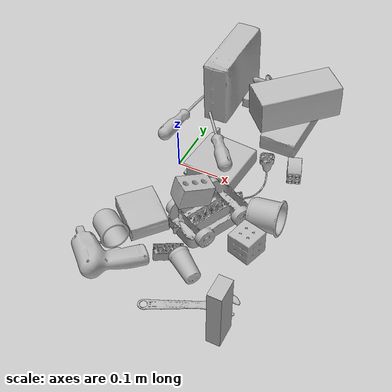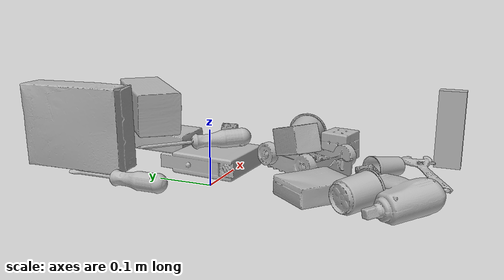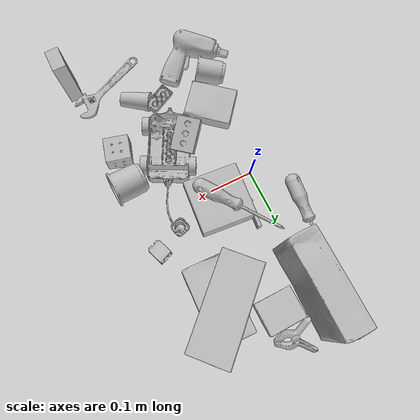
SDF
<sdf version="1.4">
  <world name="default">
    <light name="light1" type="point">
      <pose>0 0 1 0 0 0</pose>
      <diffuse>3 3 3 1</diffuse>
      <specular>3 3 3 1</specular>
    </light>
    <light name="light2" type="point">
      <pose>0 0.5 2 0 0 0</pose>
      <diffuse>1 1 1 1</diffuse>
      <specular>1 1 1 1</specular>
    </light>
    <light name="light3" type="point">
      <pose>0 0.5 2 0 0 0</pose>
      <diffuse>3 3 3 1</diffuse>
      <specular>3 3 3 1</specular>
    </light>
    <scene>
      <ambient>0.7 0.7 0.7</ambient>
    </scene>
    <model name="box21">
      <link name="link_box21">
        <collision name="default">
          <geometry>
            <mesh>
              <uri>model://cracker_box/collision_meshes/collision.obj</uri>
              <scale>1.0 1.0 1.0</scale>
            </mesh>
          </geometry>
          <surface>
            <friction>
              <ode>
                <mu>0.5</mu>
                <mu2>0.5</mu2>
              </ode>
            </friction>
          <contact>
        <ode>
            <max_vel>0</max_vel>
            <min_depth>0.0001</min_depth>
            <kp>1e8</kp>
        </ode>
    </contact></surface>
        </collision>
        <visual name="default">
          <geometry>
            <mesh>
              <uri>model://cracker_box/visual_meshes/visual.dae</uri>
              <scale>1.0 1.0 1.0</scale>
            </mesh>
          </geometry>
        </visual>
        <inertial>
          <mass>2.967785358428955</mass>
          <pose>0.0009464151808060706 0.00025434247800149024 -0.0017029535956680775 -0.0003162076618733006 -0.011106490531610344 0.00254679570085012</pose>
          <inertia>
            <ixx>0.0075487206</ixx>
            <iyy>0.012464421</iyy>
            <izz>0.017787872</izz>
            <ixy>0</ixy>
            <ixz>0</ixz>
            <iyz>0</iyz>
          </inertia>
        </inertial>
      </link>
      <pose>0.00839060265570879 0.2822447717189789 0.08175764977931976 1.5452336292455062 0.009040233017087031 1.5886534731728776</pose>
    </model>
    <model name="box22">
      <link name="link_box22">
        <collision name="default">
          <geometry>
            <mesh>
              <uri>model://rubiks_cube/collision_meshes/collision.obj</uri>
              <scale>1.0 1.0 1.0</scale>
            </mesh>
          </geometry>
          <surface>
            <friction>
              <ode>
                <mu>0.5</mu>
                <mu2>0.5</mu2>
              </ode>
            </friction>
          <contact>
        <ode>
            <max_vel>0</max_vel>
            <min_depth>0.0001</min_depth>
            <kp>1e8</kp>
        </ode>
    </contact></surface>
        </collision>
        <visual name="default">
          <geometry>
            <mesh>
              <uri>model://rubiks_cube/visual_meshes/visual.dae</uri>
              <scale>1.0 1.0 1.0</scale>
            </mesh>
          </geometry>
        </visual>
        <inertial>
          <mass>0.2631562352180481</mass>
          <pose>2.6721041649580002e-05 5.2569666877388954e-05 -7.264316082000732e-06 -0.05467275409565722 -0.09814109117242276 -0.03445701547045584</pose>
          <inertia>
            <ixx>0.0001454115</ixx>
            <iyy>0.00014473335</iyy>
            <izz>0.00014661645</izz>
            <ixy>0</ixy>
            <ixz>0</ixz>
            <iyz>0</iyz>
          </inertia>
        </inertial>
      </link>
      <pose>0.2507631480693817 -0.16981540620326996 0.02905973047018051 -3.134139495922113 0.01089223622607768 2.843466174871671</pose>
    </model>
    <model name="box23">
      <link name="link_box23">
        <collision name="default">
          <geometry>
            <mesh>
              <uri>model://pudding_box/collision_meshes/collision.obj</uri>
              <scale>1.0 1.0 1.0</scale>
            </mesh>
          </geometry>
          <surface>
            <friction>
              <ode>
                <mu>0.5</mu>
                <mu2>0.5</mu2>
              </ode>
            </friction>
          <contact>
        <ode>
            <max_vel>0</max_vel>
            <min_depth>0.0001</min_depth>
            <kp>1e8</kp>
        </ode>
    </contact></surface>
        </collision>
        <visual name="default">
          <geometry>
            <mesh>
              <uri>model://pudding_box/visual_meshes/visual.dae</uri>
              <scale>1.0 1.0 1.0</scale>
            </mesh>
          </geometry>
        </visual>
        <inertial>
          <mass>0.41353368759155273</mass>
          <pose>0.0004894821904599667 0.0008067885646596551 -0.0005188827635720372 0.005213101814074476 -0.006603797777454713 0.020079821436089117</pose>
          <inertia>
            <ixx>0.0004674785</ixx>
            <iyy>0.00031452288</iyy>
            <izz>0.0006903542</izz>
            <ixy>0</ixy>
            <ixz>0</ixz>
            <iyz>0</iyz>
          </inertia>
        </inertial>
      </link>
      <pose>0.007399552036076784 -0.18713872134685516 0.01868601329624653 -3.141592651532966 -3.0975195982015976e-08 0.8676545741487458</pose>
    </model>
    <model name="cup1">
      <link name="link_cup1">
        <collision name="default">
          <geometry>
            <mesh>
              <uri>model://cup_small/collision_meshes/collision.obj</uri>
              <scale>1.0 1.0 1.0</scale>
            </mesh>
          </geometry>
          <surface>
            <friction>
              <ode>
                <mu>0.5</mu>
                <mu2>0.5</mu2>
              </ode>
            </friction>
          <contact>
        <ode>
            <max_vel>0</max_vel>
            <min_depth>0.0001</min_depth>
            <kp>1e8</kp>
        </ode>
    </contact></surface>
        </collision>
        <visual name="default">
          <geometry>
            <mesh>
              <uri>model://cup_small/visual_meshes/visual.dae</uri>
              <scale>1.0 1.0 1.0</scale>
            </mesh>
          </geometry>
        </visual>
        <inertial>
          <mass>0.02095564641058445</mass>
          <pose>0.00010482477955520153 -0.0003377848770469427 -0.01074282731860876 -0.011492722259696445 -0.015280529703091471 -0.5058449819350237</pose>
          <inertia>
            <ixx>1.2338362e-05</ixx>
            <iyy>1.240201e-05</iyy>
            <izz>5.5708097e-06</izz>
            <ixy>0</ixy>
            <ixz>0</ixz>
            <iyz>0</iyz>
          </inertia>
        </inertial>
      </link>
      <pose>0.16158385574817657 -0.27504152059555054 0.019964419305324554 1.234299967055302 1.304097143671696 -2.510867906979853</pose>
    </model>
    <model name="cup2">
      <link name="link_cup2">
        <collision name="default">
          <geometry>
            <mesh>
              <uri>model://c_cups/collision_meshes/collision.obj</uri>
              <scale>1.0 1.0 1.0</scale>
            </mesh>
          </geometry>
          <surface>
            <friction>
              <ode>
                <mu>0.5</mu>
                <mu2>0.5</mu2>
              </ode>
            </friction>
          <contact>
        <ode>
            <max_vel>0</max_vel>
            <min_depth>0.0001</min_depth>
            <kp>1e8</kp>
        </ode>
    </contact></surface>
        </collision>
        <visual name="default">
          <geometry>
            <mesh>
              <uri>model://c_cups/visual_meshes/visual.dae</uri>
              <scale>1.0 1.0 1.0</scale>
            </mesh>
          </geometry>
        </visual>
        <inertial>
          <mass>0.04905003309249878</mass>
          <pose>0.0007237255922518671 0.0020153908990323544 -0.0012750986497849226 0.30215813246853196 0.013461388587527759 -0.08771773533446486</pose>
          <inertia>
            <ixx>3.6477843e-05</ixx>
            <iyy>3.583322e-05</iyy>
            <izz>3.225985e-05</izz>
            <ixy>0</ixy>
            <ixz>0</ixz>
            <iyz>0</iyz>
          </inertia>
        </inertial>
      </link>
      <pose>-0.028789715841412544 -0.26082944869995117 0.030088894069194794 0.8271748918678216 -1.44333154340842 1.7019736327616453</pose>
    </model>
    <model name="box11">
      <link name="link_box11">
        <collision name="default">
          <geometry>
            <mesh>
              <uri>model://sugar_box/collision_meshes/collision.obj</uri>
              <scale>1.0 1.0 1.0</scale>
            </mesh>
          </geometry>
          <surface>
            <friction>
              <ode>
                <mu>0.5</mu>
                <mu2>0.5</mu2>
              </ode>
            </friction>
          <contact>
        <ode>
            <max_vel>0</max_vel>
            <min_depth>0.0001</min_depth>
            <kp>1e8</kp>
        </ode>
    </contact></surface>
        </collision>
        <visual name="default">
          <geometry>
            <mesh>
              <uri>model://sugar_box/visual_meshes/visual.dae</uri>
              <scale>1.0 1.0 1.0</scale>
            </mesh>
          </geometry>
        </visual>
        <inertial>
          <mass>0.9405714869499207</mass>
          <pose>0.0010343727190047503 3.849109634757042e-05 -0.0003636480832938105 -0.00040462618385709627 0.0010506635220579009 0.0026153790218148127</pose>
          <inertia>
            <ixx>0.0007836817</ixx>
            <iyy>0.0025330195</iyy>
            <izz>0.0030323272</izz>
            <ixy>0</ixy>
            <ixz>0</ixz>
            <iyz>0</iyz>
          </inertia>
        </inertial>
      </link>
      <pose>0.19620023667812347 0.22090522944927216 0.022897135466337204 -0.025059021034482522 -0.012495460494385656 1.5306452418840915</pose>
    </model>
    <model name="box12">
      <link name="link_box12">
        <collision name="default">
          <geometry>
            <mesh>
              <uri>model://jenga/collision_meshes/collision.obj</uri>
              <scale>1.0 1.0 1.0</scale>
            </mesh>
          </geometry>
          <surface>
            <friction>
              <ode>
                <mu>0.5</mu>
                <mu2>0.5</mu2>
              </ode>
            </friction>
          <contact>
        <ode>
            <max_vel>0</max_vel>
            <min_depth>0.0001</min_depth>
            <kp>1e8</kp>
        </ode>
    </contact></surface>
        </collision>
        <visual name="default">
          <geometry>
            <mesh>
              <uri>model://jenga/visual_meshes/visual.dae</uri>
              <scale>1.0 1.0 1.0</scale>
            </mesh>
          </geometry>
        </visual>
        <inertial>
          <mass>0.2285791039466858</mass>
          <pose>-2.502855807051674e-07 -0.00010250010382151231 -4.0923405322246253e-05 0.0 -7.342155186052628e-07 0.0</pose>
          <inertia>
            <ixx>6.3253385e-05</ixx>
            <iyy>0.00042860323</iyy>
            <izz>0.00045757034</izz>
            <ixy>0</ixy>
            <ixz>0</ixz>
            <iyz>0</iyz>
          </inertia>
        </inertial>
      </link>
      <pose>0.2863246202468872 -0.3752305805683136 0.07347044348716736 -3.141266332412165 1.5507467904948093 3.1396770499997646</pose>
    </model>
    <model name="box13">
      <link name="link_box13">
        <collision name="default">
          <geometry>
            <mesh>
              <uri>model://wood_block/collision_meshes/collision.obj</uri>
              <scale>1.0 1.0 1.0</scale>
            </mesh>
          </geometry>
          <surface>
            <friction>
              <ode>
                <mu>0.5</mu>
                <mu2>0.5</mu2>
              </ode>
            </friction>
          <contact>
        <ode>
            <max_vel>0</max_vel>
            <min_depth>0.0001</min_depth>
            <kp>1e8</kp>
        </ode>
    </contact></surface>
        </collision>
        <visual name="default">
          <geometry>
            <mesh>
              <uri>model://wood_block/visual_meshes/visual.dae</uri>
              <scale>1.0 1.0 1.0</scale>
            </mesh>
          </geometry>
        </visual>
        <inertial>
          <mass>1.608048677444458</mass>
          <pose>-5.813315056002466e-06 -0.000570809468626976 0.0002640858292579651 -0.05220975529066727 -0.005192695547513155 -0.006861377927637377</pose>
          <inertia>
            <ixx>0.002151813</ixx>
            <iyy>0.006797577</iyy>
            <izz>0.0067721503</izz>
            <ixy>0</ixy>
            <ixz>0</ixz>
            <iyz>0</iyz>
          </inertia>
        </inertial>
      </link>
      <pose>0.19379562139511108 0.2395896166563034 0.09151899069547653 1.5880811312791723 -0.027910828289976968 0.7621615971398106</pose>
    </model>
    <model name="box14">
      <link name="link_box14">
        <collision name="default">
          <geometry>
            <mesh>
              <uri>model://gelatin_box/collision_meshes/collision.obj</uri>
              <scale>1.0 1.0 1.0</scale>
            </mesh>
          </geometry>
          <surface>
            <friction>
              <ode>
                <mu>0.5</mu>
                <mu2>0.5</mu2>
              </ode>
            </friction>
          <contact>
        <ode>
            <max_vel>0</max_vel>
            <min_depth>0.0001</min_depth>
            <kp>1e8</kp>
        </ode>
    </contact></surface>
        </collision>
        <visual name="default">
          <geometry>
            <mesh>
              <uri>model://gelatin_box/visual_meshes/visual.dae</uri>
              <scale>1.0 1.0 1.0</scale>
            </mesh>
          </geometry>
        </visual>
        <inertial>
          <mass>0.228233203291893</mass>
          <pose>0.0004319618456065655 0.00011156871914863586 -0.0003640321083366871 -0.0010503721031013481 -0.004755817754301117 0.016440566922732165</pose>
          <inertia>
            <ixx>0.000161114</ixx>
            <iyy>0.0001150829</iyy>
            <izz>0.0002452514</izz>
            <ixy>0</ixy>
            <ixz>0</ixz>
            <iyz>0</iyz>
          </inertia>
        </inertial>
      </link>
      <pose>0.08925986289978027 0.29539820551872253 0.014580653980374336 -3.1258654101229855 -0.025718986608194088 1.5980848430970984</pose>
    </model>
    <model name="cup15">
      <link name="link_cup15">
        <collision name="default">
          <geometry>
            <mesh>
              <uri>model://f_cups/collision_meshes/collision.obj</uri>
              <scale>1.0 1.0 1.0</scale>
            </mesh>
          </geometry>
          <surface>
            <friction>
              <ode>
                <mu>0.5</mu>
                <mu2>0.5</mu2>
              </ode>
            </friction>
          <contact>
        <ode>
            <max_vel>0</max_vel>
            <min_depth>0.0001</min_depth>
            <kp>1e8</kp>
        </ode>
    </contact></surface>
        </collision>
        <visual name="default">
          <geometry>
            <mesh>
              <uri>model://f_cups/visual_meshes/visual.dae</uri>
              <scale>1.0 1.0 1.0</scale>
            </mesh>
          </geometry>
        </visual>
        <inertial>
          <mass>0.05267045274376869</mass>
          <pose>-0.003171468386426568 -0.0006240073125809431 -0.003655537962913513 0.7862325736201227 -0.2607934836260618 -0.18237270236977254</pose>
          <inertia>
            <ixx>4.9511644e-05</ixx>
            <iyy>5.193826e-05</iyy>
            <izz>5.4069198e-05</izz>
            <ixy>0</ixy>
            <ixz>0</ixz>
            <iyz>0</iyz>
          </inertia>
        </inertial>
      </link>
      <pose>0.26009616255760193 -0.09056755900382996 0.03723272681236267 -0.6759648593460635 -1.452161061231242 -2.415391101170493</pose>
    </model>
    <model name="toy1">
      <link name="link_toy1">
        <collision name="default">
          <geometry>
            <mesh>
              <uri>model://g_lego_duplo/collision_meshes/collision.obj</uri>
              <scale>1.0 1.0 1.0</scale>
            </mesh>
          </geometry>
          <surface>
            <friction>
              <ode>
                <mu>0.5</mu>
                <mu2>0.5</mu2>
              </ode>
            </friction>
          <contact>
        <ode>
            <max_vel>0</max_vel>
            <min_depth>0.0001</min_depth>
            <kp>1e8</kp>
        </ode>
    </contact></surface>
        </collision>
        <visual name="default">
          <geometry>
            <mesh>
              <uri>model://g_lego_duplo/visual_meshes/visual.dae</uri>
              <scale>1.0 1.0 1.0</scale>
            </mesh>
          </geometry>
        </visual>
        <inertial>
          <mass>0.5557854771614075</mass>
          <pose>-0.050047677010297775 0.0017554635414853692 0.0038806761149317026 0.01096300832625367 0.038108254431045284 -0.0965302354071939</pose>
          <inertia>
            <ixx>0.0008053398</ixx>
            <iyy>0.0024348022</iyy>
            <izz>0.003046027</izz>
            <ixy>0</ixy>
            <ixz>0</ixz>
            <iyz>0</iyz>
          </inertia>
        </inertial>
      </link>
      <pose>0.1659512221813202 -0.07600950449705124 0.02762908861041069 3.1415706177318876 -0.03027809710448374 1.0999011940844403</pose>
    </model>
    <model name="toy2">
      <link name="link_toy2">
        <collision name="default">
          <geometry>
            <mesh>
              <uri>model://b_toy_airplane/collision_meshes/collision.obj</uri>
              <scale>1.0 1.0 1.0</scale>
            </mesh>
          </geometry>
          <surface>
            <friction>
              <ode>
                <mu>0.5</mu>
                <mu2>0.5</mu2>
              </ode>
            </friction>
          <contact>
        <ode>
            <max_vel>0</max_vel>
            <min_depth>0.0001</min_depth>
            <kp>1e8</kp>
        </ode>
    </contact></surface>
        </collision>
        <visual name="default">
          <geometry>
            <mesh>
              <uri>model://b_toy_airplane/visual_meshes/visual.dae</uri>
              <scale>1.0 1.0 1.0</scale>
            </mesh>
          </geometry>
        </visual>
        <inertial>
          <mass>0.5134223699569702</mass>
          <pose>0.00508136348798871 0.004015584941953421 0.009543065913021564 -0.0400181167848636 -0.04022184003740235 -0.5601502230799963</pose>
          <inertia>
            <ixx>0.00095317804</ixx>
            <iyy>0.00038099466</iyy>
            <izz>0.0011858484</izz>
            <ixy>0</ixy>
            <ixz>0</ixz>
            <iyz>0</iyz>
          </inertia>
        </inertial>
      </link>
      <pose>-0.00017033051699399948 -0.3337143361568451 0.01697787083685398 0.18487644918591484 0.11349913695233682 2.4017409994769263</pose>
    </model>
    <model name="toy3">
      <link name="link_toy3">
        <collision name="default">
          <geometry>
            <mesh>
              <uri>model://foam_brick/collision_meshes/collision.obj</uri>
              <scale>1.0 1.0 1.0</scale>
            </mesh>
          </geometry>
          <surface>
            <friction>
              <ode>
                <mu>0.5</mu>
                <mu2>0.5</mu2>
              </ode>
            </friction>
          <contact>
        <ode>
            <max_vel>0</max_vel>
            <min_depth>0.0001</min_depth>
            <kp>1e8</kp>
        </ode>
    </contact></surface>
        </collision>
        <visual name="default">
          <geometry>
            <mesh>
              <uri>model://foam_brick/visual_meshes/visual.dae</uri>
              <scale>1.0 1.0 1.0</scale>
            </mesh>
          </geometry>
        </visual>
        <inertial>
          <mass>0.10737738013267517</mass>
          <pose>-0.0002522472059354186 0.00034584314562380314 -0.0002532101352699101 -0.29401713280371045 0.01727443708188723 -0.0007449863066790336</pose>
          <inertia>
            <ixx>4.6904443e-05</ixx>
            <iyy>7.488536e-05</iyy>
            <izz>7.583706e-05</izz>
            <ixy>0</ixy>
            <ixz>0</ixz>
            <iyz>0</iyz>
          </inertia>
        </inertial>
      </link>
      <pose>0.10084778070449829 -0.12402667850255966 0.0715327113866806 0.009203323443528548 -0.27070394474360465 -2.262676501517649</pose>
    </model>
    <model name="toy4">
      <link name="link_toy4">
        <collision name="default">
          <geometry>
            <mesh>
              <uri>model://c_lego_duplo/collision_meshes/collision.obj</uri>
              <scale>1.0 1.0 1.0</scale>
            </mesh>
          </geometry>
          <surface>
            <friction>
              <ode>
                <mu>0.5</mu>
                <mu2>0.5</mu2>
              </ode>
            </friction>
          <contact>
        <ode>
            <max_vel>0</max_vel>
            <min_depth>0.0001</min_depth>
            <kp>1e8</kp>
        </ode>
    </contact></surface>
        </collision>
        <visual name="default">
          <geometry>
            <mesh>
              <uri>model://c_lego_duplo/visual_meshes/visual.dae</uri>
              <scale>1.0 1.0 1.0</scale>
            </mesh>
          </geometry>
        </visual>
        <inertial>
          <mass>0.0418582409620285</mass>
          <pose>0.00031645974377170205 0.00019464627257548273 0.0010453157592564821 -0.011520806412656213 0.005900100982121691 0.03110035028309464</pose>
          <inertia>
            <ixx>1.6107831e-05</ixx>
            <iyy>5.145423e-06</iyy>
            <izz>1.8823655e-05</izz>
            <ixy>0</ixy>
            <ixz>0</ixz>
            <iyz>0</iyz>
          </inertia>
        </inertial>
      </link>
      <pose>0.11092514544725418 -0.25556182861328125 0.013989723287522793 -3.132555981137438 -0.16791046942953236 -1.0789267294856926</pose>
    </model>
    <model name="toy5">
      <link name="link_toy5">
        <collision name="default">
          <geometry>
            <mesh>
              <uri>model://nine_hole_peg_test/collision_meshes/collision.obj</uri>
              <scale>1.0 1.0 1.0</scale>
            </mesh>
          </geometry>
          <surface>
            <friction>
              <ode>
                <mu>0.5</mu>
                <mu2>0.5</mu2>
              </ode>
            </friction>
          <contact>
        <ode>
            <max_vel>0</max_vel>
            <min_depth>0.0001</min_depth>
            <kp>1e8</kp>
        </ode>
    </contact></surface>
        </collision>
        <visual name="default">
          <geometry>
            <mesh>
              <uri>model://nine_hole_peg_test/visual_meshes/visual.dae</uri>
              <scale>1.0 1.0 1.0</scale>
            </mesh>
          </geometry>
        </visual>
        <inertial>
          <mass>0.44585999846458435</mass>
          <pose>-0.004617387428879738 -0.009647615253925323 2.6460689696250483e-05 -0.001466677754783098 0.0007194209279192062 -0.6342398490080472</pose>
          <inertia>
            <ixx>0.0006971755</ixx>
            <iyy>0.0006509454</iyy>
            <izz>0.0012216569</izz>
            <ixy>0</ixy>
            <ixz>0</ixz>
            <iyz>0</iyz>
          </inertia>
        </inertial>
      </link>
      <pose>0.09001799672842026 0.04010823369026184 0.020791033282876015 3.141592649993163 3.47397070687128e-07 3.0471508486271794</pose>
    </model>
    <model name="toy6">
      <link name="link_toy6">
        <collision name="default">
          <geometry>
            <mesh>
              <uri>model://d_lego_duplo/collision_meshes/collision.obj</uri>
              <scale>1.0 1.0 1.0</scale>
            </mesh>
          </geometry>
          <surface>
            <friction>
              <ode>
                <mu>0.5</mu>
                <mu2>0.5</mu2>
              </ode>
            </friction>
          <contact>
        <ode>
            <max_vel>0</max_vel>
            <min_depth>0.0001</min_depth>
            <kp>1e8</kp>
        </ode>
    </contact></surface>
        </collision>
        <visual name="default">
          <geometry>
            <mesh>
              <uri>model://d_lego_duplo/visual_meshes/visual.dae</uri>
              <scale>1.0 1.0 1.0</scale>
            </mesh>
          </geometry>
        </visual>
        <inertial>
          <mass>0.03287249803543091</mass>
          <pose>0.00283056334592402 0.0001636616507312283 0.000858980929479003 0.08010843587180921 -0.38355193616427774 0.0010296778305230027</pose>
          <inertia>
            <ixx>6.363631e-06</ixx>
            <iyy>9.031719e-06</iyy>
            <izz>8.709827e-06</izz>
            <ixy>0</ixy>
            <ixz>0</ixz>
            <iyz>0</iyz>
          </inertia>
        </inertial>
      </link>
      <pose>0.26188981533050537 0.07388623803853989 0.024197019636631012 1.7678140612511477 1.5707884798498049 0.5453423377579991</pose>
    </model>
    <model name="hardware1">
      <link name="link_hardware1">
        <collision name="default">
          <geometry>
            <mesh>
              <uri>model://phillips_screwdriver/collision_meshes/collision.obj</uri>
              <scale>1.0 1.0 1.0</scale>
            </mesh>
          </geometry>
          <surface>
            <friction>
              <ode>
                <mu>0.5</mu>
                <mu2>0.5</mu2>
              </ode>
            </friction>
          <contact>
        <ode>
            <max_vel>0</max_vel>
            <min_depth>0.0001</min_depth>
            <kp>1e8</kp>
        </ode>
    </contact></surface>
        </collision>
        <visual name="default">
          <geometry>
            <mesh>
              <uri>model://phillips_screwdriver/visual_meshes/visual.dae</uri>
              <scale>1.0 1.0 1.0</scale>
            </mesh>
          </geometry>
        </visual>
        <inertial>
          <mass>0.05929635465145111</mass>
          <pose>-0.04777182266116142 0.0010362300090491772 -0.00045555492397397757 -0.15720933335137202 0.005850991845378533 -0.002156742438797471</pose>
          <inertia>
            <ixx>6.9667135e-06</ixx>
            <iyy>8.735042e-05</iyy>
            <izz>8.742465e-05</izz>
            <ixy>0</ixy>
            <ixz>0</ixz>
            <iyz>0</iyz>
          </inertia>
        </inertial>
      </link>
      <pose>0.07062298059463501 0.062073830515146255 0.05553378909826279 2.080079806800085 0.04379352937807983 2.2028165582435615</pose>
    </model>
    <model name="hardware2">
      <link name="link_hardware2">
        <collision name="default">
          <geometry>
            <mesh>
              <uri>model://flat_screwdriver/collision_meshes/collision.obj</uri>
              <scale>1.0 1.0 1.0</scale>
            </mesh>
          </geometry>
          <surface>
            <friction>
              <ode>
                <mu>0.5</mu>
                <mu2>0.5</mu2>
              </ode>
            </friction>
          <contact>
        <ode>
            <max_vel>0</max_vel>
            <min_depth>0.0001</min_depth>
            <kp>1e8</kp>
        </ode>
    </contact></surface>
        </collision>
        <visual name="default">
          <geometry>
            <mesh>
              <uri>model://flat_screwdriver/visual_meshes/visual.dae</uri>
              <scale>1.0 1.0 1.0</scale>
            </mesh>
          </geometry>
        </visual>
        <inertial>
          <mass>0.08023945242166519</mass>
          <pose>-0.0489187017083168 -0.0006576800369657576 -0.000614091579336673 -0.561358306335632 -0.0032337267228942767 0.006982275729110292</pose>
          <inertia>
            <ixx>9.4802335e-06</ixx>
            <iyy>0.00012035375</iyy>
            <izz>0.00012029803</izz>
            <ixy>0</ixy>
            <ixz>0</ixz>
            <iyz>0</iyz>
          </inertia>
        </inertial>
      </link>
      <pose>-0.06549035757780075 0.15214261412620544 0.01489962637424469 -0.8472151796436473 0.0378246203277695 1.4668483318811871</pose>
    </model>
    <model name="hardware3">
      <link name="link_hardware3">
        <collision name="default">
          <geometry>
            <mesh>
              <uri>model://medium_clamp/collision_meshes/collision.obj</uri>
              <scale>1.0 1.0 1.0</scale>
            </mesh>
          </geometry>
          <surface>
            <friction>
              <ode>
                <mu>0.5</mu>
                <mu2>0.5</mu2>
              </ode>
            </friction>
          <contact>
        <ode>
            <max_vel>0</max_vel>
            <min_depth>0.0001</min_depth>
            <kp>1e8</kp>
        </ode>
    </contact></surface>
        </collision>
        <visual name="default">
          <geometry>
            <mesh>
              <uri>model://medium_clamp/visual_meshes/visual.dae</uri>
              <scale>1.0 1.0 1.0</scale>
            </mesh>
          </geometry>
        </visual>
        <inertial>
          <mass>0.025976430624723434</mass>
          <pose>0.0053909942507743835 0.0003953239065594971 -0.0001222159480676055 -0.001226907020768324 0.0025845009771016812 0.038207788380880015</pose>
          <inertia>
            <ixx>7.0769133e-06</ixx>
            <iyy>1.02989125e-05</iyy>
            <izz>1.5863408e-05</izz>
            <ixy>0</ixy>
            <ixz>0</ixz>
            <iyz>0</iyz>
          </inertia>
        </inertial>
      </link>
      <pose>0.08630707859992981 0.35687410831451416 0.017226766794919968 2.682421364122588 0.14760454943807305 -0.24361541277814808</pose>
    </model>
    <model name="hardware4">
      <link name="link_hardware4">
        <collision name="default">
          <geometry>
            <mesh>
              <uri>model://adjustable_wrench/collision_meshes/collision.obj</uri>
              <scale>1.0 1.0 1.0</scale>
            </mesh>
          </geometry>
          <surface>
            <friction>
              <ode>
                <mu>0.5</mu>
                <mu2>0.5</mu2>
              </ode>
            </friction>
          <contact>
        <ode>
            <max_vel>0</max_vel>
            <min_depth>0.0001</min_depth>
            <kp>1e8</kp>
        </ode>
    </contact></surface>
        </collision>
        <visual name="default">
          <geometry>
            <mesh>
              <uri>model://adjustable_wrench/visual_meshes/visual.dae</uri>
              <scale>1.0 1.0 1.0</scale>
            </mesh>
          </geometry>
        </visual>
        <inertial>
          <mass>0.023418840020895004</mass>
          <pose>0.03740980848670006 -0.00289688678458333 -0.0011149229248985648 -0.014473354604289867 0.006656022134877207 -0.010954199158636425</pose>
          <inertia>
            <ixx>4.793005e-06</ixx>
            <iyy>5.609652e-05</iyy>
            <izz>6.0634928e-05</izz>
            <ixy>0</ixy>
            <ixz>0</ixz>
            <iyz>0</iyz>
          </inertia>
        </inertial>
      </link>
      <pose>0.21036100387573242 -0.34822729229927063 0.004628591705113649 3.098350866088853 -0.01603577197075689 0.4359050911038743</pose>
    </model>
  <physics type="ode">
      <max_contacts>50</max_contacts>
      <ode>
        <solver>
          <type>quick</type>
          <iters>75</iters>
        </solver>
        <constraints>
          <contact_max_correcting_vel>0</contact_max_correcting_vel>
          <contact_surface_layer>0</contact_surface_layer>
        </constraints>
      </ode>
    </physics></world>
</sdf>
